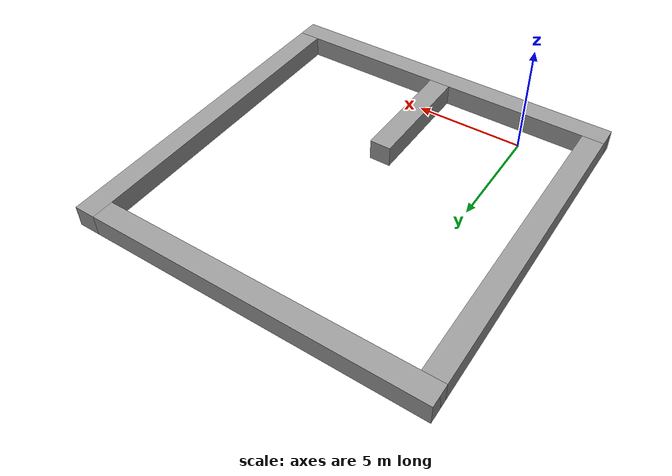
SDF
<?xml version='1.0'?>
<sdf version='1.6'>
  <model name='grand_challenge_world'>
    <link name='link'>
      <pose frame=''>-2.81061 5.60665 5.6e-05 0 -0 0</pose>
      <inertial>
        <mass>16.4785</mass>
        <inertia>
          <ixx>374.253</ixx>
          <ixy>0</ixy>
          <ixz>0</ixz>
          <iyy>2.74641</iyy>
          <iyz>0</iyz>
          <izz>374.253</izz>
        </inertia>
        <pose frame=''>0 0 0 0 -0 0</pose>
      </inertial>
      <self_collide>0</self_collide>
      <kinematic>0</kinematic>
      <visual name='visual'>
        <geometry>
          <box>
            <size>1 16.4785 1</size>
          </box>
        </geometry>
        <material>
          <script>
            <name>Gazebo/Grey</name>
            <uri>file://media/materials/scripts/gazebo.material</uri>
          </script>
          <ambient>0.3 0.3 0.3 1</ambient>
          <diffuse>0.7 0.7 0.7 1</diffuse>
          <specular>0.01 0.01 0.01 1</specular>
          <emissive>0 0 0 1</emissive>
        </material>
        <pose frame=''>0 0 0 0 -0 0</pose>
        <cast_shadows>1</cast_shadows>
        <transparency>0</transparency>
      </visual>
      <collision name='collision'>
        <laser_retro>0</laser_retro>
        <max_contacts>10</max_contacts>
        <pose frame=''>0 0 0 0 -0 0</pose>
        <geometry>
          <box>
            <size>1 16.4785 1</size>
          </box>
        </geometry>
        <surface>
          <friction>
            <ode>
              <mu>1</mu>
              <mu2>1</mu2>
              <fdir1>0 0 0</fdir1>
              <slip1>0</slip1>
              <slip2>0</slip2>
            </ode>
            <torsional>
              <coefficient>1</coefficient>
              <patch_radius>0</patch_radius>
              <surface_radius>0</surface_radius>
              <use_patch_radius>1</use_patch_radius>
              <ode>
                <slip>0</slip>
              </ode>
            </torsional>
          </friction>
          <bounce>
            <restitution_coefficient>0</restitution_coefficient>
            <threshold>1e+06</threshold>
          </bounce>
          <contact>
            <collide_without_contact>0</collide_without_contact>
            <collide_without_contact_bitmask>1</collide_without_contact_bitmask>
            <collide_bitmask>1</collide_bitmask>
            <ode>
              <soft_cfm>0</soft_cfm>
              <soft_erp>0.2</soft_erp>
              <kp>1e+13</kp>
              <kd>1</kd>
              <max_vel>0.01</max_vel>
              <min_depth>0</min_depth>
            </ode>
            <bullet>
              <split_impulse>1</split_impulse>
              <split_impulse_penetration_threshold>-0.01</split_impulse_penetration_threshold>
              <soft_cfm>0</soft_cfm>
              <soft_erp>0.2</soft_erp>
              <kp>1e+13</kp>
              <kd>1</kd>
            </bullet>
          </contact>
        </surface>
      </collision>
    </link>
    <link name='link_clone'>
      <pose frame=''>4.92864 -2.13259 6.6e-05 0 0 -1.5708</pose>
      <inertial>
        <mass>16.4785</mass>
        <inertia>
          <ixx>374.253</ixx>
          <ixy>0</ixy>
          <ixz>0</ixz>
          <iyy>2.74641</iyy>
          <iyz>0</iyz>
          <izz>374.253</izz>
        </inertia>
        <pose frame=''>0 0 0 0 -0 0</pose>
      </inertial>
      <self_collide>0</self_collide>
      <kinematic>0</kinematic>
      <visual name='visual'>
        <geometry>
          <box>
            <size>1 16.4785 1</size>
          </box>
        </geometry>
        <material>
          <script>
            <name>Gazebo/Grey</name>
            <uri>file://media/materials/scripts/gazebo.material</uri>
          </script>
          <ambient>0.3 0.3 0.3 1</ambient>
          <diffuse>0.7 0.7 0.7 1</diffuse>
          <specular>0.01 0.01 0.01 1</specular>
          <emissive>0 0 0 1</emissive>
          <shader type='pixel'/>
        </material>
        <pose frame=''>0 0 0 0 -0 0</pose>
        <cast_shadows>1</cast_shadows>
        <transparency>0</transparency>
      </visual>
      <collision name='collision'>
        <laser_retro>0</laser_retro>
        <max_contacts>10</max_contacts>
        <pose frame=''>0 0 0 0 -0 0</pose>
        <geometry>
          <box>
            <size>1 16.4785 1</size>
          </box>
        </geometry>
        <surface>
          <friction>
            <ode>
              <mu>1</mu>
              <mu2>1</mu2>
              <fdir1>0 0 0</fdir1>
              <slip1>0</slip1>
              <slip2>0</slip2>
            </ode>
            <torsional>
              <coefficient>1</coefficient>
              <patch_radius>0</patch_radius>
              <surface_radius>0</surface_radius>
              <use_patch_radius>1</use_patch_radius>
              <ode>
                <slip>0</slip>
              </ode>
            </torsional>
          </friction>
          <bounce>
            <restitution_coefficient>0</restitution_coefficient>
            <threshold>1e+06</threshold>
          </bounce>
          <contact>
            <collide_without_contact>0</collide_without_contact>
            <collide_without_contact_bitmask>1</collide_without_contact_bitmask>
            <collide_bitmask>1</collide_bitmask>
            <ode>
              <soft_cfm>0</soft_cfm>
              <soft_erp>0.2</soft_erp>
              <kp>1e+13</kp>
              <kd>1</kd>
              <max_vel>0.01</max_vel>
              <min_depth>0</min_depth>
            </ode>
            <bullet>
              <split_impulse>1</split_impulse>
              <split_impulse_penetration_threshold>-0.01</split_impulse_penetration_threshold>
              <soft_cfm>0</soft_cfm>
              <soft_erp>0.2</soft_erp>
              <kp>1e+13</kp>
              <kd>1</kd>
            </bullet>
          </contact>
        </surface>
      </collision>
    </link>
    <link name='link_clone_0'>
      <pose frame=''>12.6679 5.60666 0.000121 1e-05 -0 0</pose>
      <inertial>
        <mass>16.4785</mass>
        <inertia>
          <ixx>374.253</ixx>
          <ixy>0</ixy>
          <ixz>0</ixz>
          <iyy>2.74641</iyy>
          <iyz>0</iyz>
          <izz>374.253</izz>
        </inertia>
        <pose frame=''>0 0 0 0 -0 0</pose>
      </inertial>
      <self_collide>0</self_collide>
      <kinematic>0</kinematic>
      <visual name='visual'>
        <geometry>
          <box>
            <size>1 16.4785 1</size>
          </box>
        </geometry>
        <material>
          <script>
            <name>Gazebo/Grey</name>
            <uri>file://media/materials/scripts/gazebo.material</uri>
          </script>
          <ambient>0.3 0.3 0.3 1</ambient>
          <diffuse>0.7 0.7 0.7 1</diffuse>
          <specular>0.01 0.01 0.01 1</specular>
          <emissive>0 0 0 1</emissive>
          <shader type='pixel'/>
        </material>
        <pose frame=''>0 0 0 0 -0 0</pose>
        <cast_shadows>1</cast_shadows>
        <transparency>0</transparency>
      </visual>
      <collision name='collision'>
        <laser_retro>0</laser_retro>
        <max_contacts>10</max_contacts>
        <pose frame=''>0 0 0 0 -0 0</pose>
        <geometry>
          <box>
            <size>1 16.4785 1</size>
          </box>
        </geometry>
        <surface>
          <friction>
            <ode>
              <mu>1</mu>
              <mu2>1</mu2>
              <fdir1>0 0 0</fdir1>
              <slip1>0</slip1>
              <slip2>0</slip2>
            </ode>
            <torsional>
              <coefficient>1</coefficient>
              <patch_radius>0</patch_radius>
              <surface_radius>0</surface_radius>
              <use_patch_radius>1</use_patch_radius>
              <ode>
                <slip>0</slip>
              </ode>
            </torsional>
          </friction>
          <bounce>
            <restitution_coefficient>0</restitution_coefficient>
            <threshold>1e+06</threshold>
          </bounce>
          <contact>
            <collide_without_contact>0</collide_without_contact>
            <collide_without_contact_bitmask>1</collide_without_contact_bitmask>
            <collide_bitmask>1</collide_bitmask>
            <ode>
              <soft_cfm>0</soft_cfm>
              <soft_erp>0.2</soft_erp>
              <kp>1e+13</kp>
              <kd>1</kd>
              <max_vel>0.01</max_vel>
              <min_depth>0</min_depth>
            </ode>
            <bullet>
              <split_impulse>1</split_impulse>
              <split_impulse_penetration_threshold>-0.01</split_impulse_penetration_threshold>
              <soft_cfm>0</soft_cfm>
              <soft_erp>0.2</soft_erp>
              <kp>1e+13</kp>
              <kd>1</kd>
            </bullet>
          </contact>
        </surface>
      </collision>
    </link>
    <link name='link_clone_1'>
      <pose frame=''>4.92864 0.594115 7.2e-05 1e-05 -0 0</pose>
      <inertial>
        <mass>6.45341</mass>
        <inertia>
          <ixx>22.9344</ixx>
          <ixy>0</ixy>
          <ixz>0</ixz>
          <iyy>1.07557</iyy>
          <iyz>0</iyz>
          <izz>22.9344</izz>
        </inertia>
        <pose frame=''>0 0 0 0 -0 0</pose>
      </inertial>
      <self_collide>0</self_collide>
      <kinematic>0</kinematic>
      <visual name='visual'>
        <geometry>
          <box>
            <size>1 6.45341 1</size>
          </box>
        </geometry>
        <material>
          <script>
            <name>Gazebo/Grey</name>
            <uri>file://media/materials/scripts/gazebo.material</uri>
          </script>
          <ambient>0.3 0.3 0.3 1</ambient>
          <diffuse>0.7 0.7 0.7 1</diffuse>
          <specular>0.01 0.01 0.01 1</specular>
          <emissive>0 0 0 1</emissive>
          <shader type='pixel'/>
        </material>
        <pose frame=''>0 0 0 0 -0 0</pose>
        <cast_shadows>1</cast_shadows>
        <transparency>0</transparency>
      </visual>
      <collision name='collision'>
        <laser_retro>0</laser_retro>
        <max_contacts>10</max_contacts>
        <pose frame=''>0 0 0 0 -0 0</pose>
        <geometry>
          <box>
            <size>1 6.45341 1</size>
          </box>
        </geometry>
        <surface>
          <friction>
            <ode>
              <mu>1</mu>
              <mu2>1</mu2>
              <fdir1>0 0 0</fdir1>
              <slip1>0</slip1>
              <slip2>0</slip2>
            </ode>
            <torsional>
              <coefficient>1</coefficient>
              <patch_radius>0</patch_radius>
              <surface_radius>0</surface_radius>
              <use_patch_radius>1</use_patch_radius>
              <ode>
                <slip>0</slip>
              </ode>
            </torsional>
          </friction>
          <bounce>
            <restitution_coefficient>0</restitution_coefficient>
            <threshold>1e+06</threshold>
          </bounce>
          <contact>
            <collide_without_contact>0</collide_without_contact>
            <collide_without_contact_bitmask>1</collide_without_contact_bitmask>
            <collide_bitmask>1</collide_bitmask>
            <ode>
              <soft_cfm>0</soft_cfm>
              <soft_erp>0.2</soft_erp>
              <kp>1e+13</kp>
              <kd>1</kd>
              <max_vel>0.01</max_vel>
              <min_depth>0</min_depth>
            </ode>
            <bullet>
              <split_impulse>1</split_impulse>
              <split_impulse_penetration_threshold>-0.01</split_impulse_penetration_threshold>
              <soft_cfm>0</soft_cfm>
              <soft_erp>0.2</soft_erp>
              <kp>1e+13</kp>
              <kd>1</kd>
            </bullet>
          </contact>
        </surface>
      </collision>
    </link>
    <link name='link_clone_clone'>
      <pose frame=''>4.92864 13.3459 0.000197 0 1e-05 -1.5708</pose>
      <inertial>
        <mass>16.4785</mass>
        <inertia>
          <ixx>374.253</ixx>
          <ixy>0</ixy>
          <ixz>0</ixz>
          <iyy>2.74641</iyy>
          <iyz>0</iyz>
          <izz>374.253</izz>
        </inertia>
        <pose frame=''>0 0 0 0 -0 0</pose>
      </inertial>
      <self_collide>0</self_collide>
      <kinematic>0</kinematic>
      <visual name='visual'>
        <geometry>
          <box>
            <size>1 16.4785 1</size>
          </box>
        </geometry>
        <material>
          <script>
            <name>Gazebo/Grey</name>
            <uri>file://media/materials/scripts/gazebo.material</uri>
          </script>
          <ambient>0.3 0.3 0.3 1</ambient>
          <diffuse>0.7 0.7 0.7 1</diffuse>
          <specular>0.01 0.01 0.01 1</specular>
          <emissive>0 0 0 1</emissive>
          <shader type='pixel'/>
        </material>
        <pose frame=''>0 0 0 0 -0 0</pose>
        <cast_shadows>1</cast_shadows>
        <transparency>0</transparency>
      </visual>
      <collision name='collision'>
        <laser_retro>0</laser_retro>
        <max_contacts>10</max_contacts>
        <pose frame=''>0 0 0 0 -0 0</pose>
        <geometry>
          <box>
            <size>1 16.4785 1</size>
          </box>
        </geometry>
        <surface>
          <friction>
            <ode>
              <mu>1</mu>
              <mu2>1</mu2>
              <fdir1>0 0 0</fdir1>
              <slip1>0</slip1>
              <slip2>0</slip2>
            </ode>
            <torsional>
              <coefficient>1</coefficient>
              <patch_radius>0</patch_radius>
              <surface_radius>0</surface_radius>
              <use_patch_radius>1</use_patch_radius>
              <ode>
                <slip>0</slip>
              </ode>
            </torsional>
          </friction>
          <bounce>
            <restitution_coefficient>0</restitution_coefficient>
            <threshold>1e+06</threshold>
          </bounce>
          <contact>
            <collide_without_contact>0</collide_without_contact>
            <collide_without_contact_bitmask>1</collide_without_contact_bitmask>
            <collide_bitmask>1</collide_bitmask>
            <ode>
              <soft_cfm>0</soft_cfm>
              <soft_erp>0.2</soft_erp>
              <kp>1e+13</kp>
              <kd>1</kd>
              <max_vel>0.01</max_vel>
              <min_depth>0</min_depth>
            </ode>
            <bullet>
              <split_impulse>1</split_impulse>
              <split_impulse_penetration_threshold>-0.01</split_impulse_penetration_threshold>
              <soft_cfm>0</soft_cfm>
              <soft_erp>0.2</soft_erp>
              <kp>1e+13</kp>
              <kd>1</kd>
            </bullet>
          </contact>
        </surface>
      </collision>
    </link>
    <static>1</static>
    <allow_auto_disable>1</allow_auto_disable>
  </model>
</sdf>
